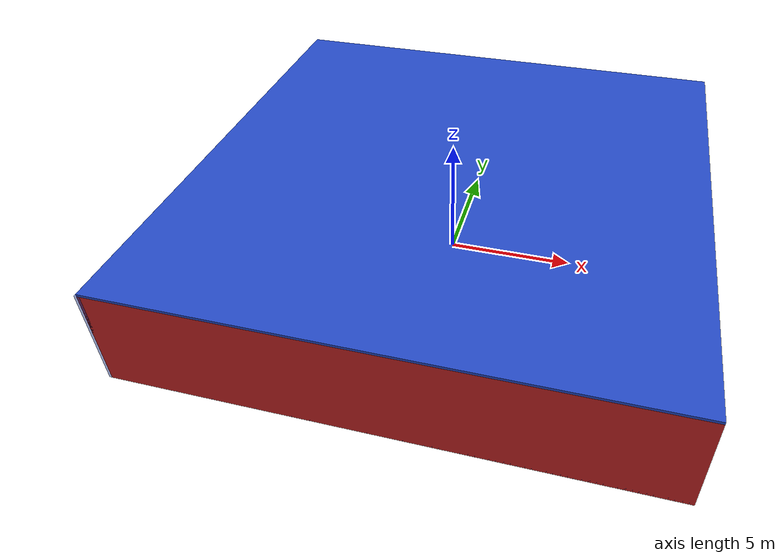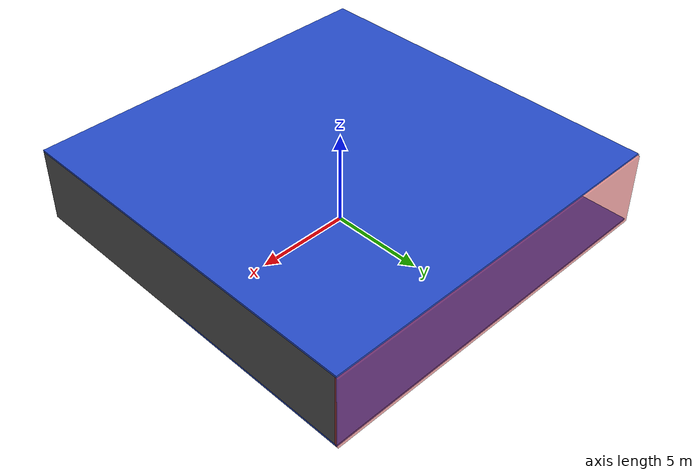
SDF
<sdf version="1.4">
 <world name="default">
  <physics type="ode">
   <max_step_size>0.001</max_step_size>
   <real_time_factor>1</real_time_factor>
   <real_time_update_rate>1000</real_time_update_rate>
   <gravity>0 0 -9.8</gravity>
  </physics>
  <scene><ambient>0.4 0.4 0.4 1</ambient><background>0.7 0.7 0.7 1</background><shadows>1</shadows></scene>
  <model name="Surrounding">
   <static>1</static>
   <link name="Ceiling">
    <collision name="Ceiling_Collision"><geometry><box><size>20 20 0.1</size></box></geometry></collision>
    <visual name="Ceiling_Visual">
     <geometry><box><size>20 20 0.1</size></box></geometry>
     <material>
      <script><uri>file://media/materials/scripts/gazebo.material</uri><name>Gazebo/Blue</name></script>
     </material>
    </visual>
    <pose>0 0 4.05 0 0 0</pose>
   </link>
   <link name="Wall_South">
    <collision name="Wall_South_Collision">
     <geometry><box><size>20 0 4</size></box></geometry>
     <pose>0 0 2 0 -0 0</pose>
    </collision>
    <visual name="Wall_South_Visual">
     <pose>0 0 2 0 -0 0</pose>
     <geometry><box><size>20 0 4</size></box></geometry>
     <material>
      <script><uri>file://media/materials/scripts/gazebo.material</uri><name>Gazebo/RedGlow</name></script>
     </material>
    </visual>
    <velocity_decay><linear>0</linear><angular>0</angular></velocity_decay>
    <pose>0 -10 0 0 -0 0</pose>
   </link>
   <link name="Wall_East">
    <collision name="Wall_21_Collision">
     <geometry><box><size>20 0 4</size></box></geometry>
     <pose>0 0 2 0 -0 0</pose>
    </collision>
    <visual name="Wall_21_Visual">
     <pose>0 0 2 0 -0 0</pose>
     <geometry><box><size>20 0 4</size></box></geometry>
     <material>
      <script><uri>file://media/materials/scripts/gazebo.material</uri><name>Gazebo/Road</name></script>
     </material>
    </visual>
    <velocity_decay><linear>0</linear><angular>0</angular></velocity_decay>
    <pose>10 0 0 0 -0 1.5708</pose>
   </link>
   <link name="Wall_North">
    <collision name="Wall_22_Collision">
     <geometry><box><size>20 0.2 4</size></box></geometry>
     <pose>0 0 2 0 -0 0</pose>
    </collision>
    <visual name="Wall_22_Visual">
     <pose>0 0 2 0 -0 0</pose>
     <geometry><box><size>20 0.2 4</size></box></geometry>
     <material>
      <script><uri>file://media/materials/scripts/gazebo.material</uri><name>Gazebo/RedTransparent</name></script>
     </material>
    </visual>
    <velocity_decay><linear>0</linear><angular>0</angular></velocity_decay>
    <pose>0 10 0 0 -0 0</pose>
   </link>
   <link name="Wall_West">
    <collision name="Wall_23_Collision">
     <geometry><box><size>20 0.2 4</size></box></geometry>
     <pose>0 0 2 0 -0 0</pose>
    </collision>
    <visual name="Wall_23_Visual">
     <pose>0 0 2 0 -0 0</pose>
     <geometry><box><size>20 0.2 4</size></box></geometry>
     <material>
      <script><uri>file://media/materials/scripts/gazebo.material</uri><name>Gazebo/BlueTransparent</name></script>
     </material>
    </visual>
    <velocity_decay><linear>0</linear><angular>0</angular></velocity_decay>
    <pose>-10 0 0 0 0 -1.5708</pose>
   </link>
   <link name="Ground_link">
    <collision name="collision">
     <pose>0 0 .05 0 -0 0</pose>
     <geometry><box><size>20 20 0.1</size></box></geometry>
    </collision>
    <visual name="visual">
     <pose>0 0 .05 0 -0 0</pose>
     <geometry><box><size>20 20 0.1</size></box></geometry>
     <material>
      <script><uri>file://media/materials/scripts/gazebo.material</uri><name>Gazebo/Blue</name></script>
     </material>
    </visual>
   </link>
   <static>1</static>
  </model>
  <spherical_coordinates>
   <surface_model>EARTH_WGS84</surface_model>
   <latitude_deg>0</latitude_deg>
   <longitude_deg>0</longitude_deg>
   <elevation>0</elevation>
   <heading_deg>0</heading_deg>
  </spherical_coordinates>
  <light name="lightball_0" type="diffuse">
   <diffuse>0.8 0.8 0.8 1</diffuse>
   <specular>0.2 0.2 0.2 1</specular>
   <attenuation>
    <range>100</range>
    <constant>0.7</constant>
    <linear>0.01</linear>
    <quadratic>0.001</quadratic>
   </attenuation>
   <direction>-0.5 0.1 -0.9</direction>
   <pose>0.515816022944 -8.54224092815 0.559932406777 0 0 0</pose>
  </light>
  <light name="lightball_1" type="diffuse">
   <diffuse>0.8 0.8 0.8 1</diffuse>
   <specular>0.2 0.2 0.2 1</specular>
   <attenuation>
    <range>100</range>
    <constant>0.7</constant>
    <linear>0.01</linear>
    <quadratic>0.001</quadratic>
   </attenuation>
   <direction>-0.5 0.1 -0.9</direction>
   <pose>-0.136139711997 -1.85438048579 1.5799584089 0 0 0</pose>
  </light>
  <light name="lightball_2" type="diffuse">
   <diffuse>0.8 0.8 0.8 1</diffuse>
   <specular>0.2 0.2 0.2 1</specular>
   <attenuation>
    <range>100</range>
    <constant>0.7</constant>
    <linear>0.01</linear>
    <quadratic>0.001</quadratic>
   </attenuation>
   <direction>-0.5 0.1 -0.9</direction>
   <pose>-5.12510385991 1.20213569608 2.76348580553 0 0 0</pose>
  </light>
  <light name="lightball_3" type="diffuse">
   <diffuse>0.8 0.8 0.8 1</diffuse>
   <specular>0.2 0.2 0.2 1</specular>
   <attenuation>
    <range>100</range>
    <constant>0.7</constant>
    <linear>0.01</linear>
    <quadratic>0.001</quadratic>
   </attenuation>
   <direction>-0.5 0.1 -0.9</direction>
   <pose>6.63219344317 9.16613469937 3.18030769891 0 0 0</pose>
  </light>
  <light name="lightball_4" type="diffuse">
   <diffuse>0.8 0.8 0.8 1</diffuse>
   <specular>0.2 0.2 0.2 1</specular>
   <attenuation>
    <range>100</range>
    <constant>0.7</constant>
    <linear>0.01</linear>
    <quadratic>0.001</quadratic>
   </attenuation>
   <direction>-0.5 0.1 -0.9</direction>
   <pose>0.675307657643 -2.34052762939 1.46551381241 0 0 0</pose>
  </light>
  <light name="lightball_5" type="diffuse">
   <diffuse>0.8 0.8 0.8 1</diffuse>
   <specular>0.2 0.2 0.2 1</specular>
   <attenuation>
    <range>100</range>
    <constant>0.7</constant>
    <linear>0.01</linear>
    <quadratic>0.001</quadratic>
   </attenuation>
   <direction>-0.5 0.1 -0.9</direction>
   <pose>-0.462186333127 8.42680637354 1.51368191629 0 0 0</pose>
  </light>
  <light name="lightball_6" type="diffuse">
   <diffuse>0.8 0.8 0.8 1</diffuse>
   <specular>0.2 0.2 0.2 1</specular>
   <attenuation>
    <range>100</range>
    <constant>0.7</constant>
    <linear>0.01</linear>
    <quadratic>0.001</quadratic>
   </attenuation>
   <direction>-0.5 0.1 -0.9</direction>
   <pose>-7.31761413381 5.25092804638 2.76255187648 0 0 0</pose>
  </light>
  <light name="lightball_7" type="diffuse">
   <diffuse>0.8 0.8 0.8 1</diffuse>
   <specular>0.2 0.2 0.2 1</specular>
   <attenuation>
    <range>100</range>
    <constant>0.7</constant>
    <linear>0.01</linear>
    <quadratic>0.001</quadratic>
   </attenuation>
   <direction>-0.5 0.1 -0.9</direction>
   <pose>8.04599942424 -3.30319395972 3.71869102098 0 0 0</pose>
  </light>
  <light name="lightball_8" type="diffuse">
   <diffuse>0.8 0.8 0.8 1</diffuse>
   <specular>0.2 0.2 0.2 1</specular>
   <attenuation>
    <range>100</range>
    <constant>0.7</constant>
    <linear>0.01</linear>
    <quadratic>0.001</quadratic>
   </attenuation>
   <direction>-0.5 0.1 -0.9</direction>
   <pose>1.10470129684 2.67487795363 0.776377620889 0 0 0</pose>
  </light>
  <light name="lightball_9" type="diffuse">
   <diffuse>0.8 0.8 0.8 1</diffuse>
   <specular>0.2 0.2 0.2 1</specular>
   <attenuation>
    <range>100</range>
    <constant>0.7</constant>
    <linear>0.01</linear>
    <quadratic>0.001</quadratic>
   </attenuation>
   <direction>-0.5 0.1 -0.9</direction>
   <pose>3.64711720642 -3.61798148975 2.4068015088 0 0 0</pose>
  </light>
  <light name="lightball_10" type="diffuse">
   <diffuse>0.8 0.8 0.8 1</diffuse>
   <specular>0.2 0.2 0.2 1</specular>
   <attenuation>
    <range>100</range>
    <constant>0.7</constant>
    <linear>0.01</linear>
    <quadratic>0.001</quadratic>
   </attenuation>
   <direction>-0.5 0.1 -0.9</direction>
   <pose>6.98944795804 3.1979560297 3.50807065919 0 0 0</pose>
  </light>
  <light name="lightball_11" type="diffuse">
   <diffuse>0.8 0.8 0.8 1</diffuse>
   <specular>0.2 0.2 0.2 1</specular>
   <attenuation>
    <range>100</range>
    <constant>0.7</constant>
    <linear>0.01</linear>
    <quadratic>0.001</quadratic>
   </attenuation>
   <direction>-0.5 0.1 -0.9</direction>
   <pose>-1.66148309275 -9.88189777783 2.97065986681 0 0 0</pose>
  </light>
  <include>
   <uri>model://robocup_3Dsim_goal</uri>
   <pose>-1.32654019945 1.05242763891 0 0 0 0.357985319701</pose>
  </include>
  <include>
   <uri>model://construction_cone</uri>
   <pose>1.83069070154 1.91456182425 0 0 0 0.787700073166</pose>
  </include>
 </world>
</sdf>

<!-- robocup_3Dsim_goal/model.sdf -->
<sdf version="1.5">
  <model name="robocup_3d_goal">
    <static>true</static>
    <link name="left_post">
      <pose>0 1.05 0.45 0 0 0</pose>
      <collision name="collision">
        <geometry>
          <cylinder>
            <radius>0.05</radius>
            <length>0.9</length>
          </cylinder>
        </geometry>
      </collision>
      <visual name="visual">
        <geometry>
          <cylinder>
            <radius>0.05</radius>
            <length>0.9</length>
          </cylinder>
        </geometry>
        <material>
          <script>
            <uri>file://media/materials/scripts/gazebo.material</uri>
            <name>Gazebo/ZincYellow</name>
          </script>
        </material>
      </visual>
    </link>
    <link name="left_support_horiz_lower">
      <pose>0.30 1.05 0.01 0 0 0</pose>
      <collision name="collision">
        <geometry>
          <box>
            <size>0.50 0.02 0.02</size>
          </box>
        </geometry>
      </collision>
      <visual name="visual">
        <geometry>
          <box>
            <size>0.50 0.02 0.02</size>
          </box>
        </geometry>
        <material>
          <script>
            <uri>file://media/materials/scripts/gazebo.material</uri>
            <name>Gazebo/White</name>
          </script>
        </material>
      </visual>
    </link>
    <link name="left_support_horiz_upper">
      <pose>0.30 1.05 0.79 0 0 0</pose>
      <collision name="collision">
        <geometry>
          <box>
            <size>0.50 0.02 0.02</size>
          </box>
        </geometry>
      </collision>
      <visual name="visual">
        <geometry>
          <box>
            <size>0.50 0.02 0.02</size>
          </box>
        </geometry>
        <material>
          <script>
            <uri>file://media/materials/scripts/gazebo.material</uri>
            <name>Gazebo/White</name>
          </script>
        </material>
      </visual>
    </link>
    <link name="left_support_vertical">
      <pose>0.56 1.05 0.4 0 1.5708 0</pose>
      <collision name="collision">
        <geometry>
          <box>
            <size>0.80 0.02 0.02</size>
          </box>
        </geometry>
      </collision>
      <visual name="visual">
        <geometry>
          <box>
            <size>0.80 0.02 0.02</size>
          </box>
        </geometry>
        <material>
          <script>
            <uri>file://media/materials/scripts/gazebo.material</uri>
            <name>Gazebo/White</name>
          </script>
        </material>
      </visual>
    </link>
    <link name="right_support_horiz_lower">
      <pose>0.30 -1.05 0.01 0 0 0</pose>
      <collision name="collision">
        <geometry>
          <box>
            <size>0.50 0.02 0.02</size>
          </box>
        </geometry>
      </collision>
      <visual name="visual">
        <geometry>
          <box>
            <size>0.50 0.02 0.02</size>
          </box>
        </geometry>
        <material>
          <script>
            <uri>file://media/materials/scripts/gazebo.material</uri>
            <name>Gazebo/White</name>
          </script>
        </material>
      </visual>
    </link>
    <link name="right_support_horiz_upper">
      <pose>0.30 -1.05 0.79 0 0 0</pose>
      <collision name="collision">
        <geometry>
          <box>
            <size>0.50 0.02 0.02</size>
          </box>
        </geometry>
      </collision>
      <visual name="visual">
        <geometry>
          <box>
            <size>0.50 0.02 0.02</size>
          </box>
        </geometry>
        <material>
          <script>
            <uri>file://media/materials/scripts/gazebo.material</uri>
            <name>Gazebo/White</name>
          </script>
        </material>
      </visual>
    </link>
    <link name="right_support_vertical">
      <pose>0.56 -1.05 0.4 0 1.5708 0</pose>
      <collision name="collision">
        <geometry>
          <box>
            <size>0.80 0.02 0.02</size>
          </box>
        </geometry>
      </collision>
      <visual name="visual">
        <geometry>
          <box>
            <size>0.80 0.02 0.02</size>
          </box>
        </geometry>
        <material>
          <script>
            <uri>file://media/materials/scripts/gazebo.material</uri>
            <name>Gazebo/White</name>
          </script>
        </material>
      </visual>
    </link>
    <link name="center_support_horiz_lower">
      <pose>0.56 0 0.01 0 1.5708 0</pose>
      <collision name="collision">
        <geometry>
          <box>
            <size>0.02 2.08 0.02</size>
          </box>
        </geometry>
      </collision>
      <visual name="visual">
        <geometry>
          <box>
            <size>0.02 2.08 0.02</size>
          </box>
        </geometry>
        <material>
          <script>
            <uri>file://media/materials/scripts/gazebo.material</uri>
            <name>Gazebo/White</name>
          </script>
        </material>
      </visual>
    </link>
    <link name="center_support_horiz_upper">
      <pose>0.56 0 0.79 0 1.5708 0</pose>
      <collision name="collision">
        <geometry>
          <box>
            <size>0.02 2.08 0.02</size>
          </box>
        </geometry>
      </collision>
      <visual name="visual">
        <geometry>
          <box>
            <size>0.02 2.08 0.02</size>
          </box>
        </geometry>
        <material>
          <script>
            <uri>file://media/materials/scripts/gazebo.material</uri>
            <name>Gazebo/White</name>
          </script>
        </material>
      </visual>
    </link>
    <link name="right_post">
      <pose>0 -1.05 0.45 0 0 0</pose>
      <collision name="collision">
        <geometry>
          <cylinder>
            <radius>0.05</radius>
            <length>0.9</length>
          </cylinder>
        </geometry>
      </collision>
      <visual name="visual">
        <geometry>
          <cylinder>
            <radius>0.05</radius>
            <length>0.9</length>
          </cylinder>
        </geometry>
        <material>
          <script>
            <uri>file://media/materials/scripts/gazebo.material</uri>
            <name>Gazebo/ZincYellow</name>
          </script>
        </material>
      </visual>
    </link>
    <link name="crossbar">
      <pose>0 0 0.85 1.57 1.57 0</pose>
      <collision name="collision">
        <geometry>
          <cylinder>
            <radius>0.05</radius>
            <length>2.0</length>
          </cylinder>
        </geometry>
      </collision>
      <visual name="visual">
        <geometry>
          <cylinder>
            <radius>0.05</radius>
            <length>2.0</length>
          </cylinder>
        </geometry>
        <material>
          <script>
            <uri>file://media/materials/scripts/gazebo.material</uri>
            <name>Gazebo/ZincYellow</name>
          </script>
        </material>
      </visual>
    </link>
    <link name="center_net">
      <pose>0.56 0 0.40 0 0 0</pose>
      <collision name="collision">
        <geometry>
          <box>
            <size>0.01 2.1 0.80</size>
          </box>
        </geometry>
      </collision>
      <visual name="visual">
        <geometry>
          <box>
            <size>0.01 2.1 0.80</size>
          </box>
        </geometry>
        <material>
          <script>
            <uri>model://../model_source/models/robocup09_spl_field/materials/scripts/</uri>
            <uri>model://../model_source/models/robocup09_spl_field/materials/textures/</uri>
            <name>RoboCup/Net</name>
          </script>
        </material>
      </visual>
    </link>
    <link name="left_net">
      <pose>0.30 1.05 0.40 0 0 0</pose>
      <collision name="collision">
        <geometry>
          <box>
            <size>0.50 0.01 0.76</size>
          </box>
        </geometry>
      </collision>
      <visual name="visual">
        <geometry>
          <box>
            <size>0.50 0.01 0.76</size>
          </box>
        </geometry>
        <material>
          <script>
            <uri>model://../model_source/models/robocup09_spl_field/materials/scripts/</uri>
            <uri>model://../model_source/models/robocup09_spl_field/materials/textures/</uri>
            <name>RoboCup/Net</name>
          </script>
        </material>
      </visual>
    </link>
    <link name="right_net">
      <pose>0.30 -1.05 0.40 0 0 0</pose>
      <collision name="collision">
        <geometry>
          <box>
            <size>0.50 0.01 0.76</size>
          </box>
        </geometry>
      </collision>
      <visual name="visual">
        <geometry>
          <box>
            <size>0.50 0.01 0.76</size>
          </box>
        </geometry>
        <material>
          <script>
            <uri>model://../model_source/models/robocup09_spl_field/materials/scripts/</uri>
            <uri>model://../model_source/models/robocup09_spl_field/materials/textures/</uri>
            <name>RoboCup/Net</name>
          </script>
        </material>
      </visual>
    </link>
  </model>
</sdf>

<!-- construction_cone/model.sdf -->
<sdf version="1.5">
  <model name="Construction Cone">
    <link name="link">
      <collision name="collision">
        <geometry>
          <mesh>
            <scale>10 10 10</scale>
            <uri>file://isr-testbed/construction_cone/meshes/construction_cone.dae</uri>
          </mesh>
        </geometry>
      </collision>
      <visual name="visual">
        <geometry>
          <mesh>
            <scale>10 10 10</scale>
            <uri>file://isr-testbed/construction_cone/meshes/construction_cone.dae</uri>
          </mesh>
        </geometry>
      </visual>
    </link>
  </model>
</sdf>
